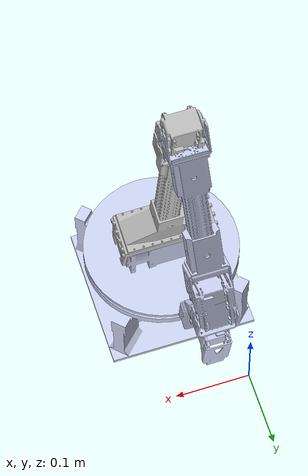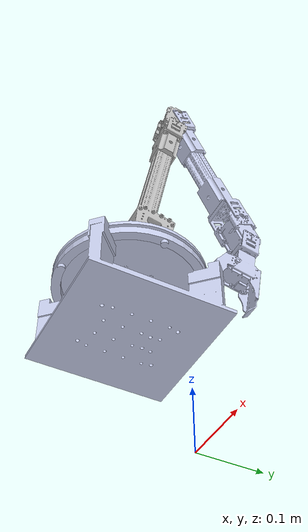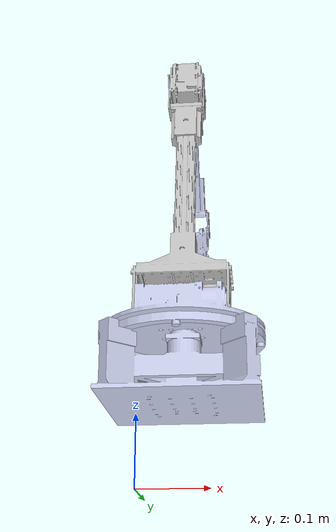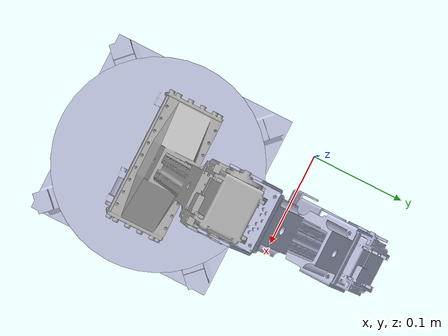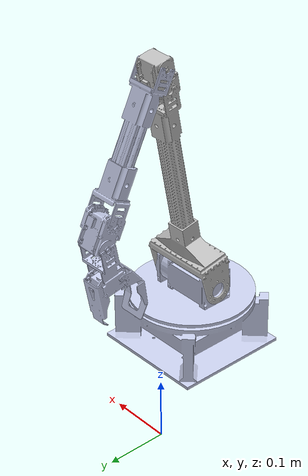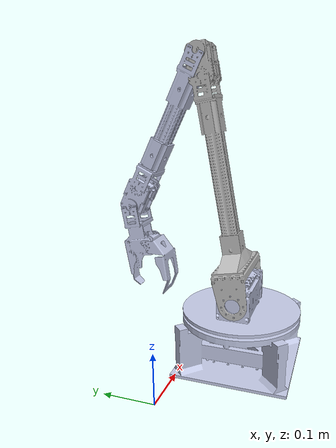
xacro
<?xml version="1.0"?>
<robot xmlns:xacro="http://www.ros.org/wiki/xacro" name="Robotic_Arm">

  <xacro:macro name="transmission_block" params="joint_name">
        <transmission name="tran1">
            <type>transmission_interface/SimpleTransmission</type>
            <joint name="${joint_name}">
                <hardwareInterface>hardware_interface/PositionJointInterface</hardwareInterface>
            </joint>
            <actuator name="motor1">
                <hardwareInterface>hardware_interface/PositionJointInterface</hardwareInterface>
                <mechanicalReduction>1</mechanicalReduction>
            </actuator>
        </transmission>
  </xacro:macro>

  <link
    name="base_link">
    <inertial>
      <origin
        xyz="0.077471 -0.13294 0.11201"
        rpy="0 0 0" />
      <mass
        value="0.74796" />
      <inertia
        ixx="0.0022573"
        ixy="2.2339E-07"
        ixz="-8.1079E-08"
        iyy="0.0022579"
        iyz="-1.057E-07"
        izz="0.0039789" />
    </inertial>
    <visual>
      <origin
        xyz="0 0 0"
        rpy="0 0 0" />
      <geometry>
        <mesh
          filename="package://Robotic_Arm/meshes/base_link.STL" />
      </geometry>
      <material
        name="">
        <color
          rgba="0.79216 0.81961 0.93333 1" />
      </material>
    </visual>
    <collision>
      <origin
        xyz="0 0 0"
        rpy="0 0 0" />
      <geometry>
        <mesh
          filename="package://Robotic_Arm/meshes/base_link.STL" />
      </geometry>
    </collision>
  </link>
  <link
    name="arm_link_1">
    <inertial>
      <origin
        xyz="-0.0023986 0.021961 -0.00036542"
        rpy="0 0 0" />
      <mass
        value="0.44911" />
      <inertia
        ixx="0.00052376"
        ixy="1.1533E-09"
        ixz="-4.7849E-08"
        iyy="0.0011151"
        iyz="2.7992E-10"
        izz="0.00072274" />
    </inertial>
    <visual>
      <origin
        xyz="0 0 0"
        rpy="0 0 0" />
      <geometry>
        <mesh
          filename="package://Robotic_Arm/meshes/arm_link_1.STL" />
      </geometry>
      <material
        name="">
        <color
          rgba="0.79216 0.81961 0.93333 1" />
      </material>
    </visual>
    <collision>
      <origin
        xyz="0 0 0"
        rpy="0 0 0" />
      <geometry>
        <mesh
          filename="package://Robotic_Arm/meshes/arm_link_1.STL" />
      </geometry>
    </collision>
  </link>
  <joint
    name="arm_joint_1"
    type="continuous">
    <origin
      xyz="0.077663 -0.13275 0.16758"
      rpy="1.5708 0 0" />
    <parent
      link="base_link" />
    <child
      link="arm_link_1" />
    <axis
      xyz="0 1 0" />
    <limit effort="300" velocity="1" />
    <dynamics damping="50" friction="1"/>
    <safety_controller
      k_velocity="0" />
  </joint>
  <link
    name="arm_link_2">
    <inertial>
      <origin
        xyz="-0.00050058 0.19252 -0.00026568"
        rpy="0 0 0" />
      <mass
        value="0.42193" />
      <inertia
        ixx="0.001191"
        ixy="-9.3857E-08"
        ixz="-3.6112E-07"
        iyy="0.00016587"
        iyz="-8.5846E-07"
        izz="0.0011224" />
    </inertial>
    <visual>
      <origin
        xyz="0 0 0"
        rpy="0 0 0" />
      <geometry>
        <mesh
          filename="package://Robotic_Arm/meshes/arm_link_2.STL" />
      </geometry>
      <material
        name="">
        <color
          rgba="0.75294 0.75294 0.75294 1" />
      </material>
    </visual>
    <collision>
      <origin
        xyz="0 0 0"
        rpy="0 0 0" />
      <geometry>
        <mesh
          filename="package://Robotic_Arm/meshes/arm_link_2.STL" />
      </geometry>
    </collision>
  </link>
  <joint
    name="arm_joint_2"
    type="continuous">
    <origin
      xyz="-0.0023104 0.032 -0.00054816"
      rpy="-1.5708 -1.3894 1.5708" />
    <parent
      link="arm_link_1" />
    <child
      link="arm_link_2" />
    <axis
      xyz="0 0 1" />
    <limit effort="300" velocity="1" />
    <dynamics damping="50" friction="1"/>
    <safety_controller
      k_velocity="0" />
  </joint>
  <link
    name="arm_link_3">
    <inertial>
      <origin
        xyz="0.00088882 0.15812 0.00071071"
        rpy="0 0 0" />
      <mass
        value="0.25828" />
      <inertia
        ixx="0.00027832"
        ixy="-8.812E-07"
        ixz="-1.4423E-11"
        iyy="5.4616E-05"
        iyz="-8.6935E-09"
        izz="0.00029095" />
    </inertial>
    <visual>
      <origin
        xyz="0 0 0"
        rpy="0 0 0" />
      <geometry>
        <mesh
          filename="package://Robotic_Arm/meshes/arm_link_3.STL" />
      </geometry>
      <material
        name="">
        <color
          rgba="0.79216 0.81961 0.93333 1" />
      </material>
    </visual>
    <collision>
      <origin
        xyz="0 0 0"
        rpy="0 0 0" />
      <geometry>
        <mesh
          filename="package://Robotic_Arm/meshes/arm_link_3.STL" />
      </geometry>
    </collision>
  </link>
  <joint
    name="arm_joint_3"
    type="continuous">
    <origin
      xyz="-0.0011 0.391 0.0013878"
      rpy="2.5049 -1.5708 0" />
    <parent
      link="arm_link_2" />
    <child
      link="arm_link_3" />
    <axis
      xyz="1 0 0" />
    <limit effort="300" velocity="1" />
    <dynamics damping="50" friction="1"/>
    <safety_controller
      k_velocity="0" />
  </joint>
  <link
    name="arm_link_4">
    <inertial>
      <origin
        xyz="0.00043251 0.065624 0.00078915"
        rpy="0 0 0" />
      <mass
        value="0.059133" />
      <inertia
        ixx="1.4968E-05"
        ixy="4.3637E-13"
        ixz="1.8275E-07"
        iyy="1.725E-05"
        iyz="-6.5009E-09"
        izz="1.5087E-05" />
    </inertial>
    <visual>
      <origin
        xyz="0 0 0"
        rpy="0 0 0" />
      <geometry>
        <mesh
          filename="package://Robotic_Arm/meshes/arm_link_4.STL" />
      </geometry>
      <material
        name="">
        <color
          rgba="0.79216 0.81961 0.93333 1" />
      </material>
    </visual>
    <collision>
      <origin
        xyz="0 0 0"
        rpy="0 0 0" />
      <geometry>
        <mesh
          filename="package://Robotic_Arm/meshes/arm_link_4.STL" />
      </geometry>
    </collision>
  </link>
  <joint
    name="arm_joint_4"
    type="continuous">
    <origin
      xyz="0.0034 0.2704 0.0011"
      rpy="0.63673 0 0" />
    <parent
      link="arm_link_3" />
    <child
      link="arm_link_4" />
    <axis
      xyz="1 0 0" />
    <limit effort="300" velocity="1" />
    <dynamics damping="50" friction="1"/>
    <safety_controller
      k_velocity="0" />
  </joint>
  <link
    name="arm_link_end">
    <inertial>
      <origin
        xyz="0.030016 -0.023618 0.0143"
        rpy="0 0 0" />
      <mass
        value="0.0085149" />
      <inertia
        ixx="3.6005E-06"
        ixy="5.6076E-07"
        ixz="-1.6478E-13"
        iyy="9.4274E-06"
        iyz="7.1464E-14"
        izz="6.9141E-06" />
    </inertial>
    <visual>
      <origin
        xyz="0 0 0"
        rpy="0 0 0" />
      <geometry>
        <mesh
          filename="package://Robotic_Arm/meshes/arm_link_end.STL" />
      </geometry>
      <material
        name="">
        <color
          rgba="0.79216 0.81961 0.93333 1" />
      </material>
    </visual>
    <collision>
      <origin
        xyz="0 0 0"
        rpy="0 0 0" />
      <geometry>
        <mesh
          filename="package://Robotic_Arm/meshes/arm_link_end.STL" />
      </geometry>
    </collision>
  </link>
  <joint
    name="arm_joint_end"
    type="continuous">
    <origin
      xyz="0.01755 0.0702 0.0155"
      rpy="-1.5708 0 1.5708" />
    <parent
      link="arm_link_4" />
    <child
      link="arm_link_end" />
    <axis
      xyz="0 0 1" />
    <limit effort="300" velocity="1" />
    <dynamics damping="50" friction="1"/>
    <safety_controller
      k_velocity="0" />
  </joint>

  <gazebo reference="arm_link_1">
    <material>Gazebo/DarkGrey</material>
  </gazebo>

  <gazebo reference="arm_link_2">
    <material>Gazebo/White</material>
  </gazebo>

  <gazebo reference="arm_link_3">
    <material>Gazebo/White</material>
  </gazebo>

  <gazebo reference="arm_link_4">
    <material>Gazebo/White</material>
  </gazebo>

  <gazebo reference="arm_link_end">
    <material>Gazebo/DarkGrey</material>
  </gazebo>

  <xacro:transmission_block joint_name="arm_joint_1"/>
  <xacro:transmission_block joint_name="arm_joint_2"/>
  <xacro:transmission_block joint_name="arm_joint_3"/>
  <xacro:transmission_block joint_name="arm_joint_4"/>
  <xacro:transmission_block joint_name="arm_joint_end"/>

<gazebo>
    <plugin name="gazebo_ros_control" filename="libgazebo_ros_control.so">
        <robotNamespace>/Robotic_Arm</robotNamespace>
    </plugin>
</gazebo>

</robot>
